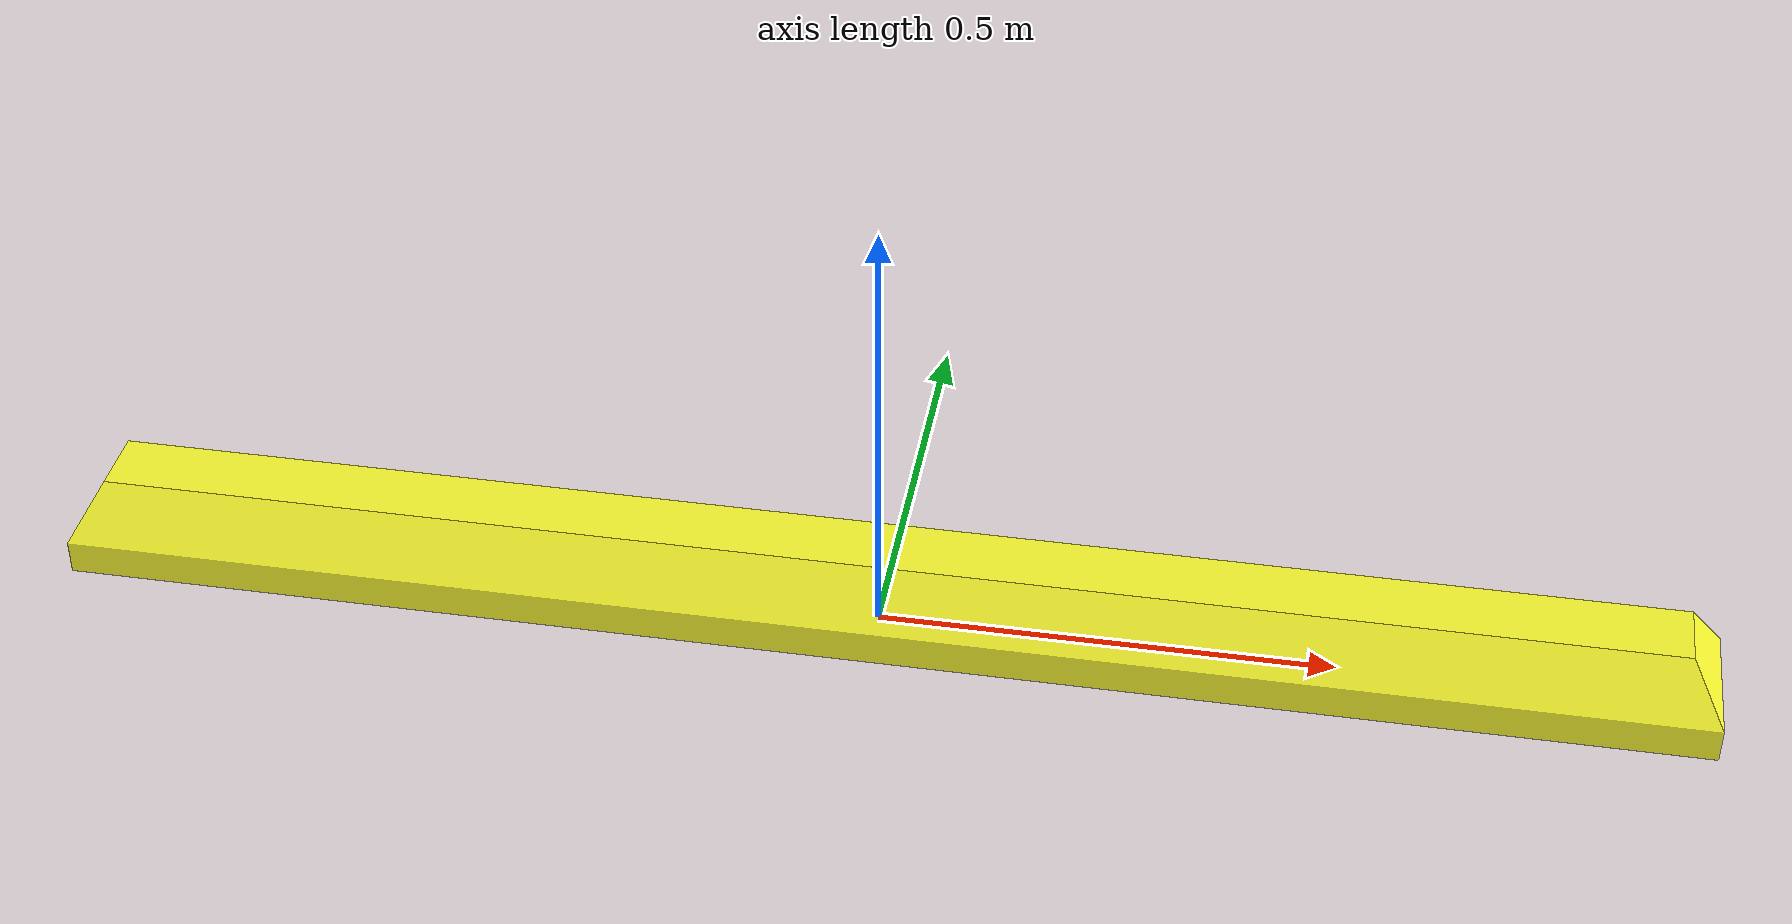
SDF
<?xml version="1.0" ?>
<sdf version="1.5">
  <model name="yellow_parking_block_perp">
    <static>true</static>
    <link name="link">
      <visual name="visual">
		  <pose>0 0 0 0 0 -1.57079632679</pose>
        <geometry>
          <mesh>
            <uri>model://drc_practice_yellow_parking_block/meshes/block.dae</uri>
          </mesh>
        </geometry>
      </visual>
      <collision name="collision">
        <geometry>
          <mesh>
            <uri>model://drc_practice_yellow_parking_block/meshes/block.dae</uri>
					<scale>100.0 100.0 100.0</scale>
          </mesh>
        </geometry>
      </collision>
    </link>
  </model>
</sdf>
